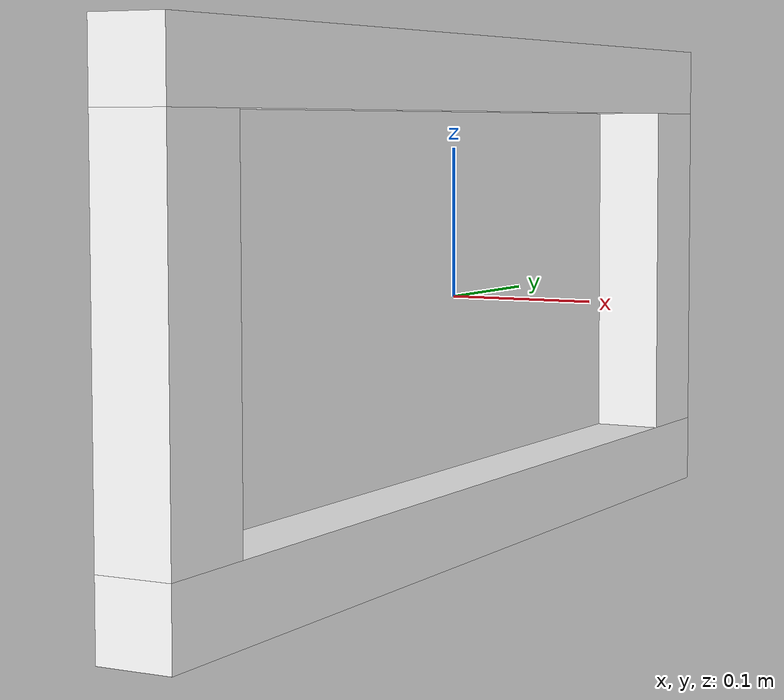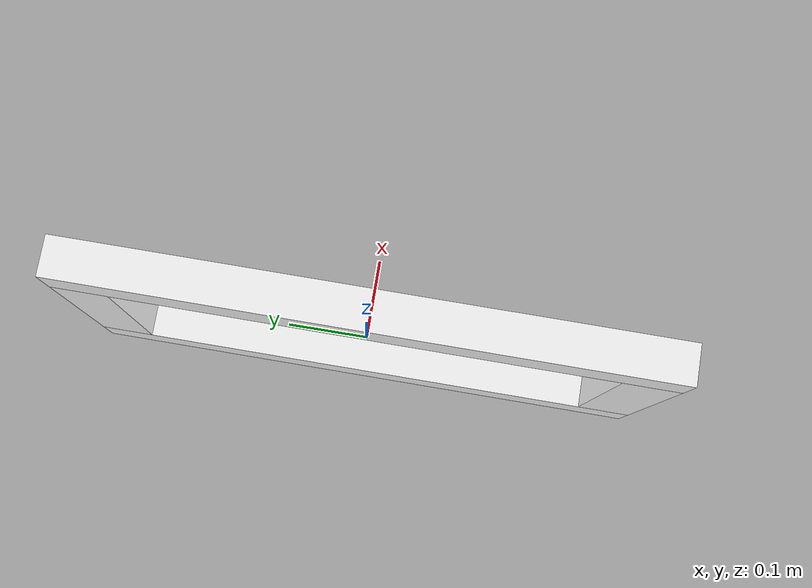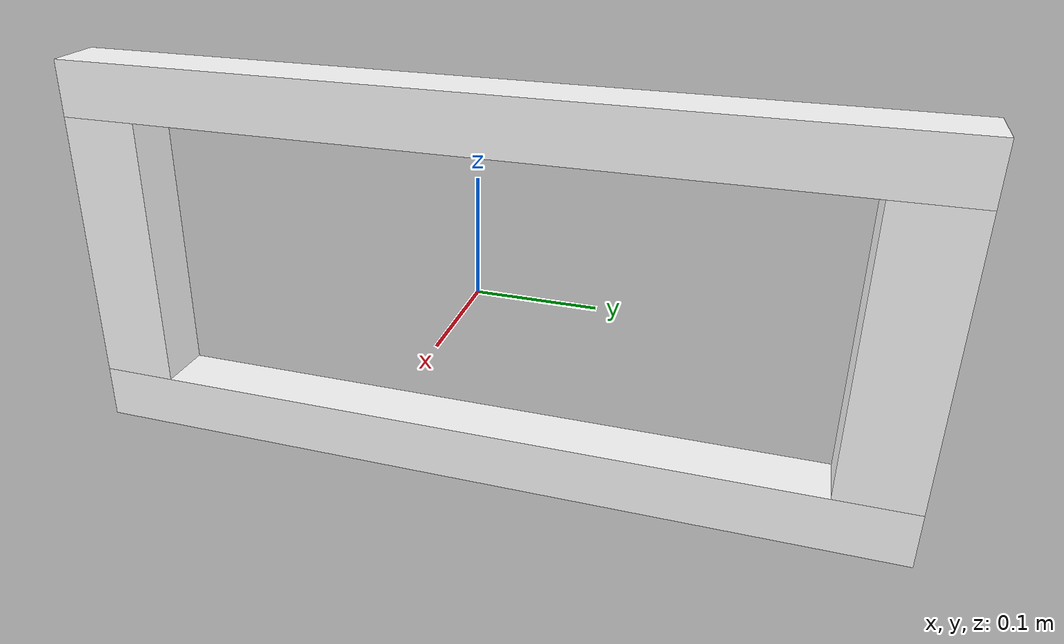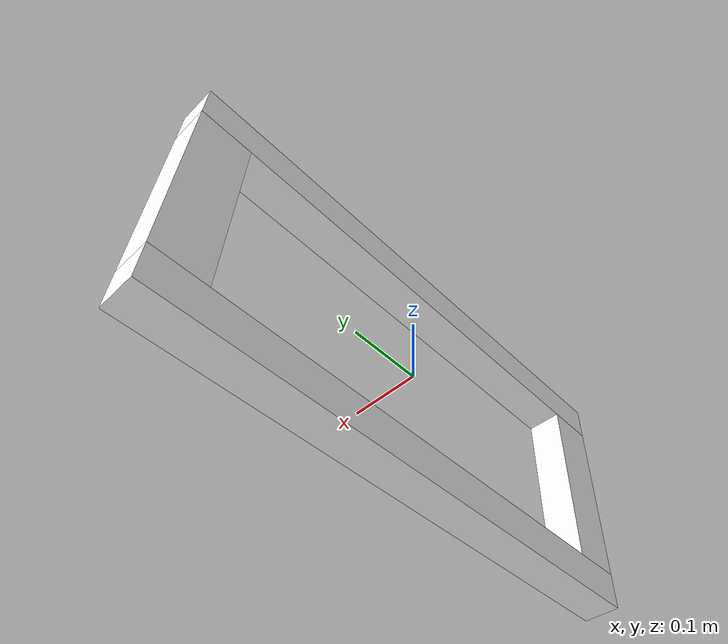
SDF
<?xml version="1.0" encoding="UTF-8"?>
<sdf version="1.9">
  <model name="gate">
    <static>true</static>
    <link name="frame">
      <!-- Top bar: inner edge z=+0.125, outer z=+0.175; spans full outer width. -->
      <visual name="top_visual">
        <pose>0 0 0.15 0 0 0</pose>
        <geometry><box><size>0.05 0.738 0.05</size></box></geometry>
        <material>
          <ambient>0.9 0.9 0.9 1</ambient>
          <diffuse>1 1 1 1</diffuse>
          <specular>0.6 0.6 0.6 1</specular>
        </material>
      </visual>

      <!-- Bottom bar: inner edge z=-0.125, outer z=-0.175. -->
      <visual name="bottom_visual">
        <pose>0 0 -0.15 0 0 0</pose>
        <geometry><box><size>0.05 0.738 0.05</size></box></geometry>
        <material>
          <ambient>0.9 0.9 0.9 1</ambient>
          <diffuse>1 1 1 1</diffuse>
          <specular>0.6 0.6 0.6 1</specular>
        </material>
      </visual>

      <!-- Left bar: inner edge y=-0.30, outer y=-0.369; spans inner height in z. -->
      <visual name="left_visual">
        <pose>0 -0.3345 0 0 0 0</pose>
        <geometry><box><size>0.05 0.069 0.25</size></box></geometry>
        <material>
          <ambient>0.9 0.9 0.9 1</ambient>
          <diffuse>1 1 1 1</diffuse>
          <specular>0.6 0.6 0.6 1</specular>
        </material>
      </visual>

      <!-- Right bar: inner edge y=+0.30, outer y=+0.369. -->
      <visual name="right_visual">
        <pose>0 0.3345 0 0 0 0</pose>
        <geometry><box><size>0.05 0.069 0.25</size></box></geometry>
        <material>
          <ambient>0.9 0.9 0.9 1</ambient>
          <diffuse>1 1 1 1</diffuse>
          <specular>0.6 0.6 0.6 1</specular>
        </material>
      </visual>
    </link>
  </model>
</sdf>
